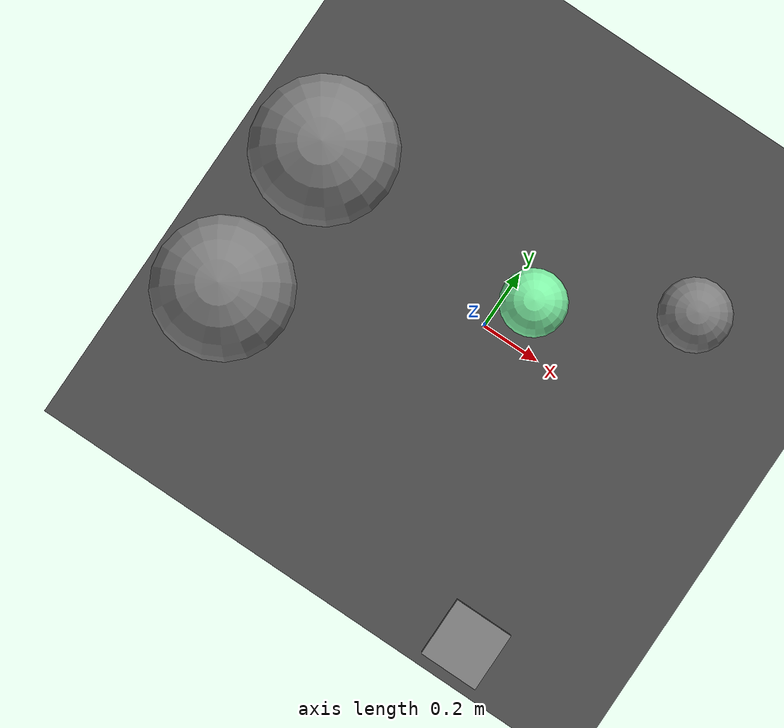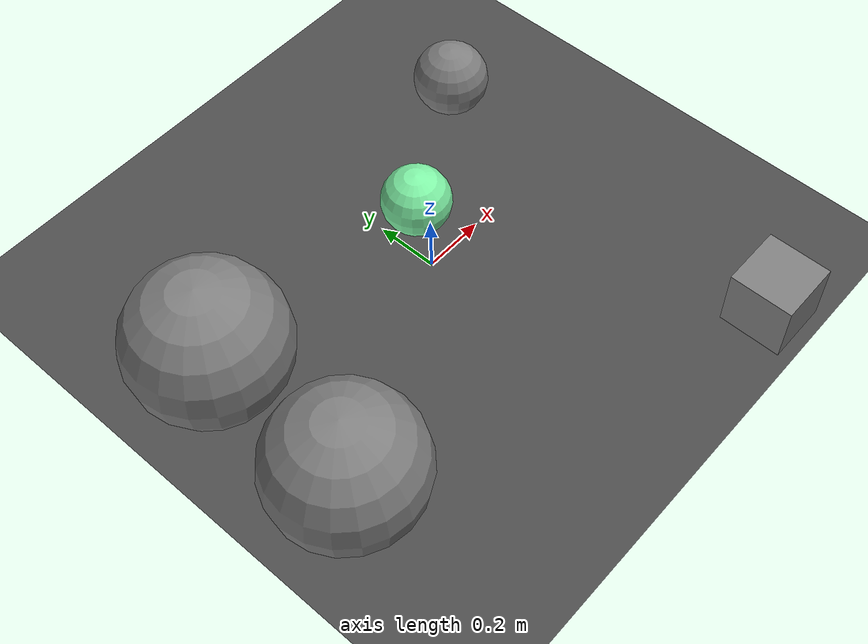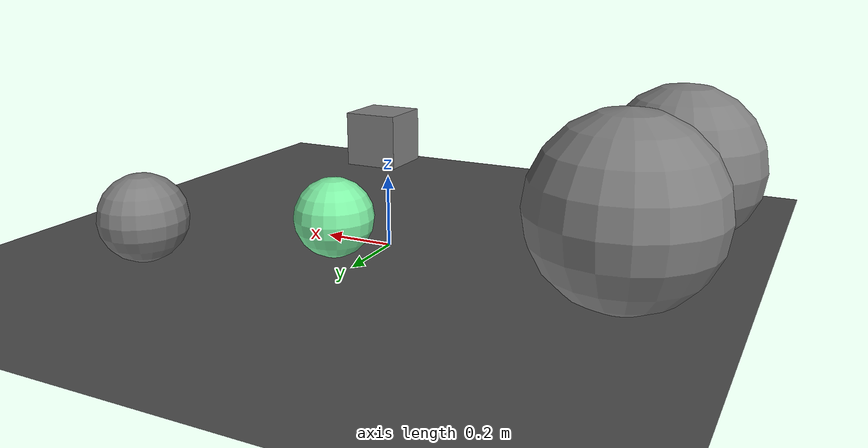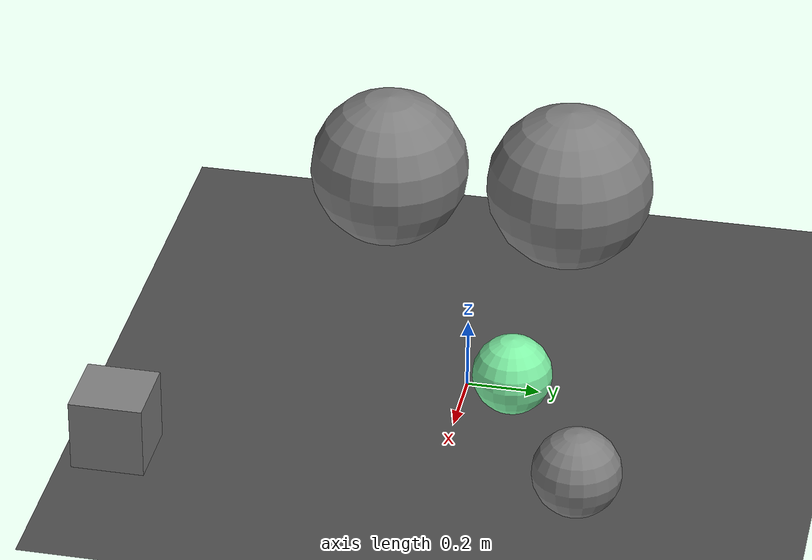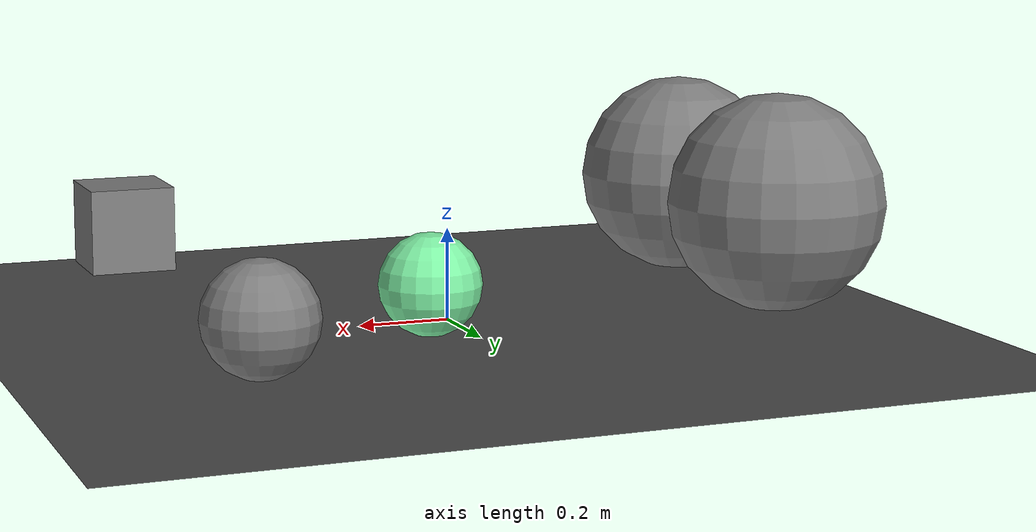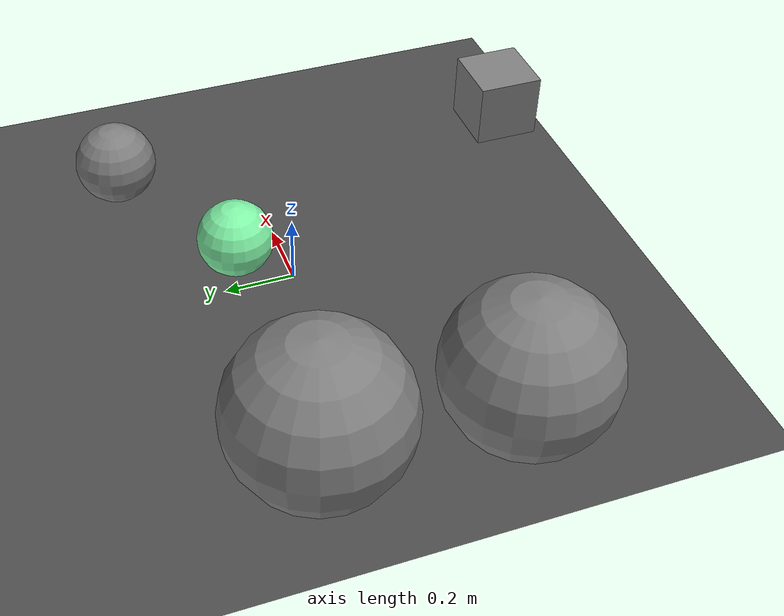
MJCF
<mujoco>
   <asset>
      <texture name="builtin_checker" builtin="checker" type="2d" rgb1="1 1 0" rgb2="0 0 1" width="200" height="200"/>
      <texture name="builtin_gradient" builtin="gradient" rgb1="0 .9 .3" rgb2="1 1 1" width="200" height="200"/>
      <texture name="builtin_flat" builtin="flat" rgb1="1 0 0" rgb2="1 0 0"  width="200" height="200"/>

      <material name="checker_mat" reflectance="0.9" texrepeat="3 3" texture="builtin_checker" texuniform="false" />
      <material name="gradient_mat" reflectance="1" texrepeat="1 1" texture="builtin_gradient" texuniform="true"/>
      <material name="flat_mat" reflectance="1" texrepeat="1 1" texture="builtin_flat" texuniform="true"/>
   </asset>

   <worldbody>
      <light diffuse=".9 .9 .9" pos="0 0 3" dir="0 0 -1"/>
     <geom type="plane" size="1 1 0.1" rgba="0.3 0.3 0.3 1"/>
<body pos="-0.71 0.16 0.24">
<joint type="free"/>
 <geom type="sphere" size="0.24 0.24 0.24" material="checker_mat" />
</body>
<body pos="-0.73 -0.37 0.23">
<joint type="free"/>
 <geom type="sphere" size="0.23 0.23 0.23" material="checker_mat" />
</body>
<body pos="0.09 0.14 0.11">
<joint type="free"/>
 <geom type="sphere" size="0.11 0.11 0.11" material="gradient_mat" />
</body>
<body pos="0.51 -0.86 0.1">
<joint type="free"/>
 <geom type="box" size="0.1 0.1 0.1" material="checker_mat" />
</body>
<body pos="0.53 0.39 0.12">
<joint type="free"/>
 <geom type="sphere" size="0.12 0.12 0.12" material="checker_mat" />
</body><camera euler="60 0 180" fovy="60" name="camera_a" pos="0 -1.5 1"></camera>   </worldbody>
</mujoco>
